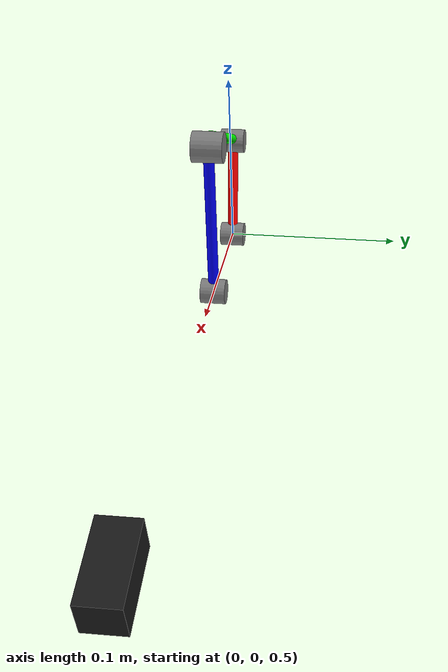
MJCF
<mujoco model="Optimus_Knee_Mechanism_472268">
    <option timestep="0.001" />

    <statistic center="0.15 0 0.5" extent="0.5" />

    <visual>
        <headlight diffuse="0.6 0.6 0.6" ambient="0.25 0.25 0.25" />
        <rgba haze="0.05 0.1 0.15 1" />
        <global azimuth="85" elevation="-10" />
    </visual>

    <asset>
        <texture type="skybox" builtin="gradient" rgb1="0.3 0.5 0.7" rgb2="0.1 0.2 0.3" width="256"
            height="256" />
        <texture type="2d" name="groundplane" builtin="checker" mark="edge" rgb1="0.5 0.6 0.7"
            rgb2="0.005 0.005 0.005" markrgb="0.8 0.8 0.8" width="300" height="300" />
        <material name="groundplane" texture="groundplane" texuniform="true" texrepeat="10 10"
            reflectance="0.2" />
    </asset>

    <worldbody>
        <light pos="0 0 1.5" />
        <light pos="0 0 3" dir="0 0 -1" directional="true" />
        <geom name="floor" size="0 0 .125" type="plane" material="groundplane" conaffinity="15"
            condim="3" />
        <body pos="0 0 0.5" euler="0 -10.5 0">
            <joint name="O" axis="0 1 0" range="-75 75" damping="0.1" />
            <geom name="O" type="cylinder" pos="0 0 0" size="0.007 0.007" rgba="0.5 0.5 0.5 1"
                euler="90 0 0" contype="0" />
            <geom name="Length_1" type="cylinder" pos="0 0 0.0295" size="0.003 0.0295"
                rgba="1 0 0 1" contype="0" />
            <body pos="0 0 0.059" euler="0 17 0">
                <joint name="A" axis="0 1 0" range="-35 180" />
                <geom name="A" type="cylinder" pos="0 0 0" size="0.007 0.007" rgba="0.5 0.5 0.5 1"
                    euler="90 0 0" contype="0" />
                <geom name="Length_2" type="cylinder" pos="0.038 0 0.023" size="0.003 0.038"
                    euler="0 60 0" rgba="0 1 0 1" contype="0" />
                <site name="s1" pos="0.0767 0 0.04" size="0.0025" />
            </body>
        </body>

        <body pos="0.072 0 0.5">
            <joint name="C" axis="0 1 0" />
            <geom name="C" type="cylinder" pos="0 0 0" size="0.007 0.007" rgba="0.5 0.5 0.5 1"
                euler="90 0 0" contype="0" />
            <geom name="Length_3" type="cylinder" size="0.003" fromto="0 0 0 0 0 0.0885"
                rgba="0 0 1 1" contype="0" />
            <site name="s2" pos="0 0 0.085" size="0.0025" />
            <body pos="0 0 0.0885">
                <joint name="B" axis="0 1 0" range="-35 180" />
                <geom name="B" type="cylinder" pos="0 0 0" size="0.0085 0.0085" rgba="0.5 0.5 0.5 1"
                    euler="90 0 0" contype="0" />
            </body>
        </body>

        <body name="Input" pos="0.25 0 0.5" euler="0 -75 0">
            <geom name="Input" type="box" size="0.01 0.01 0.02" pos="0.025 0 -0.055"
                rgba="0.1 0.1 0.1 1" />
            <site name="LA_site" pos="0.025 0 -0.055" size="0.005 0.005" rgba="0.5 0.5 0.5 1" />
        </body>

    </worldbody>

    <equality>
        <connect site1="s1" site2="s2" />
    </equality>

    <actuator>
        <motor name="Linear_Actuator" slidersite="LA_site" cranksite="s2" cranklength="0.295"
            ctrlrange="0 0.5" gear="1" />
    </actuator>

</mujoco>
